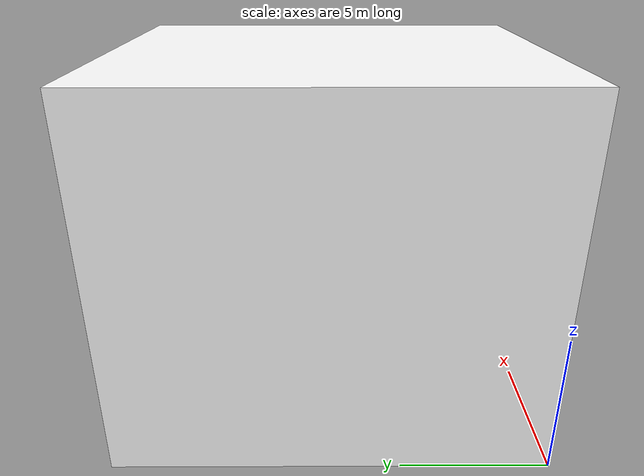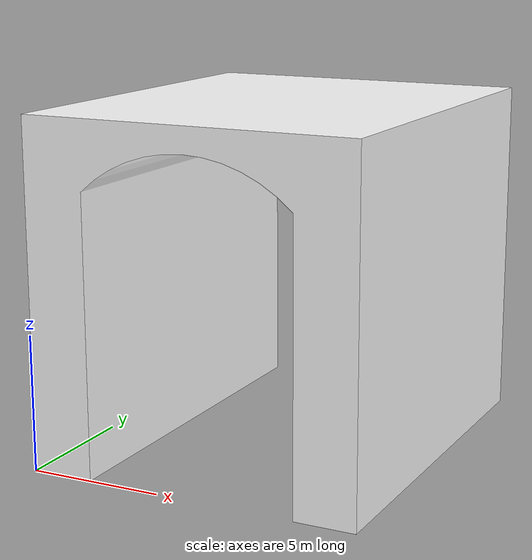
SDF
<?xml version="1.0" ?>
<sdf version="1.5">
  <model name="cps_tunnel">
    <static>true</static>
    <link name="link">
      <visual name="visual">
        <geometry>
          <mesh>
            <uri>model://cps_tunnel/meshes/cps_tunnel.dae</uri>
          </mesh>
        </geometry>
      </visual>
      <collision name="collision">
        <geometry>
          <mesh>
            <uri>model://cps_tunnel/meshes/cps_tunnel.dae</uri>
          </mesh>
        </geometry>
      </collision>
    </link>
  </model>
</sdf>
